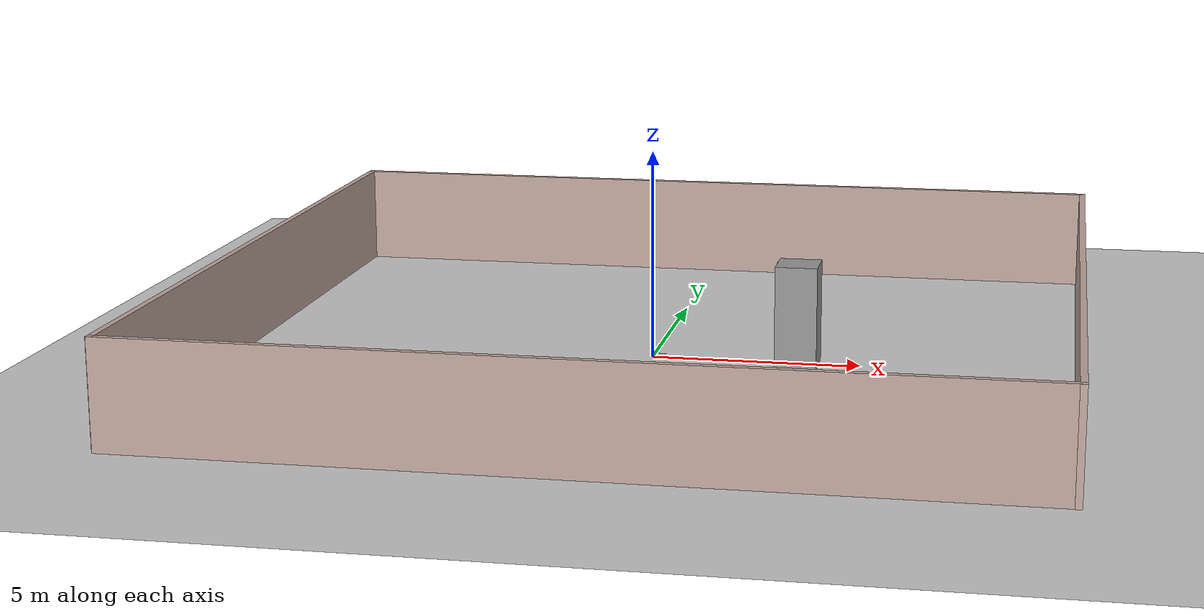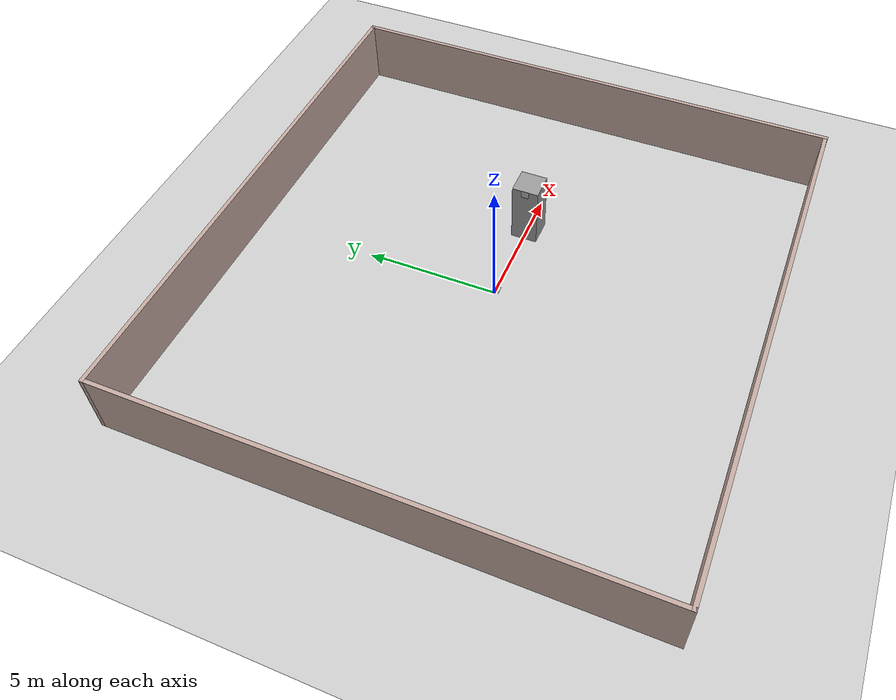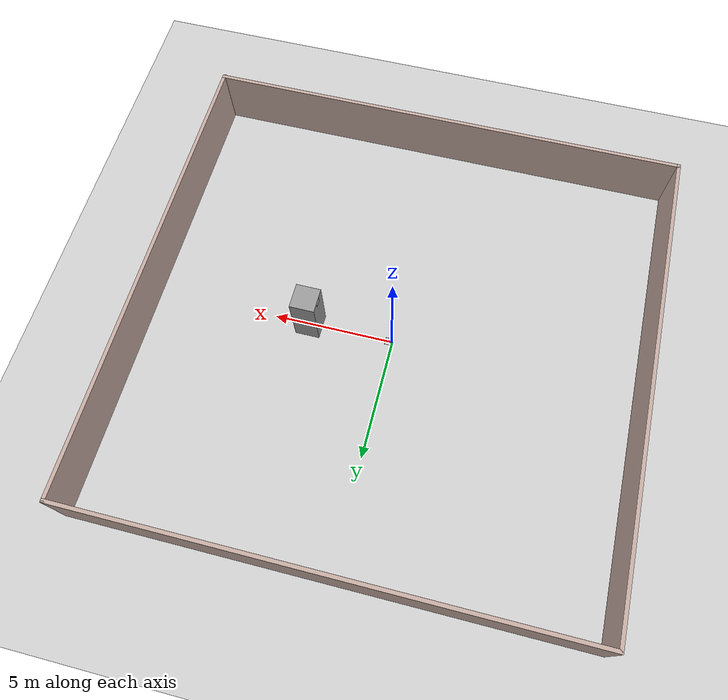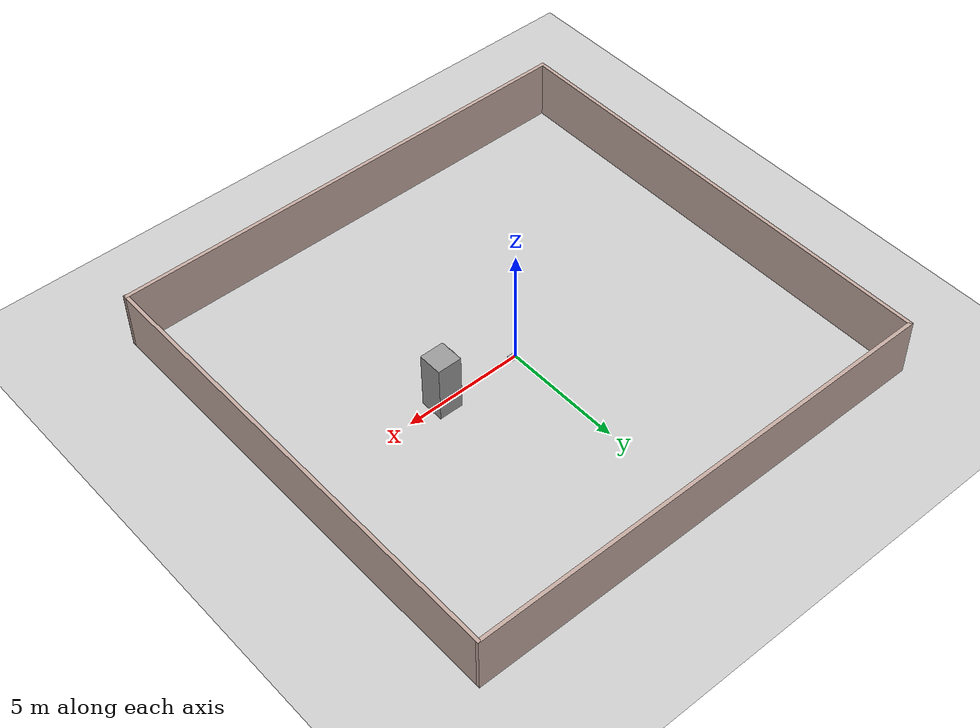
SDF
<sdf version="1.6">
 <world name="default">
  <include><uri>model://ApriltagID0</uri><pose>0.15 0 0.05 0 1.57 0</pose></include>
  <include><uri>model://ApriltagID1</uri><pose>3 0 2.3 0 -0 0</pose></include>
  <plugin name="ros_interface_plugin" filename="librotors_gazebo_ros_interface_plugin.so"/>
  <spherical_coordinates>
   <surface_model>EARTH_WGS84</surface_model>
   <latitude_deg>47.3667</latitude_deg>
   <longitude_deg>8.5500</longitude_deg>
   <elevation>500.0</elevation>
   <heading_deg>0</heading_deg>
  </spherical_coordinates>
  <physics type="ode">
   <ode>
    <solver><type>quick</type><iters>1000</iters><sor>1.3</sor></solver>
    <constraints>
     <cfm>0</cfm>
     <erp>0.2</erp>
     <contact_max_correcting_vel>100</contact_max_correcting_vel>
     <contact_surface_layer>0.001</contact_surface_layer>
    </constraints>
   </ode>
   <max_step_size>0.01</max_step_size>
   <real_time_factor>1</real_time_factor>
   <real_time_update_rate>100</real_time_update_rate>
   <gravity>0 0 -9.8</gravity>
  </physics>
  <light name="sun" type="directional">
   <pose>0 0 10 0 -0 0</pose>
   <diffuse>0.8 0.8 0.8 1</diffuse>
   <specular>0.2 0.2 0.2 1</specular>
   <attenuation>
    <range>1000</range>
    <constant>0.9</constant>
    <linear>0.01</linear>
    <quadratic>0.001</quadratic>
   </attenuation>
   <direction>-0.5 0.1 -0.9</direction>
  </light>
  <model name="ground_plane">
   <static>1</static>
   <link name="link">
    <collision name="collision">
     <geometry><plane><normal>0 0 1</normal><size>100 100</size></plane></geometry>
     <surface>
      <contact><collide_bitmask>65535</collide_bitmask></contact>
      <friction><ode><mu>100</mu><mu2>50</mu2></ode></friction>
     </surface>
    </collision>
    <visual name="visual">
     <cast_shadows>0</cast_shadows>
     <geometry><plane><normal>0 0 1</normal><size>100 100</size></plane></geometry>
     <material>
      <script><uri>file://media/materials/scripts/gazebo.material</uri><name>Gazebo/Grey</name></script>
     </material>
    </visual>
   </link>
  </model>
  <gravity>0 0 -9.8</gravity>
  <magnetic_field>6e-06 2.3e-05 -4.2e-05</magnetic_field>
  <atmosphere type="adiabatic"/>
  <physics name="default_physics" default="0" type="ode">
   <max_step_size>0.001</max_step_size>
   <real_time_factor>1</real_time_factor>
   <real_time_update_rate>1000</real_time_update_rate>
  </physics>
  <scene><ambient>0.4 0.4 0.4 1</ambient><background>0.7 0.7 0.7 1</background><shadows>1</shadows></scene>
  <audio><device>default</device></audio>
  <spherical_coordinates>
   <surface_model>EARTH_WGS84</surface_model>
   <latitude_deg>0</latitude_deg>
   <longitude_deg>0</longitude_deg>
   <elevation>0</elevation>
   <heading_deg>0</heading_deg>
  </spherical_coordinates>
  <model name="Room1">
   <pose>0.052821 0.021612 0 0 -0 0</pose>
   <link name="Wall_5">
    <collision name="Wall_5_Collision">
     <geometry><box><size>20.2375 0.15 2.5</size></box></geometry>
     <pose>0 0 1.25 0 -0 0</pose>
    </collision>
    <visual name="Wall_5_Visual">
     <pose>0 0 1.25 0 -0 0</pose>
     <geometry><box><size>20.2375 0.15 2.5</size></box></geometry>
     <material>
      <script><uri>file://media/materials/scripts/gazebo.material</uri><name>Gazebo/Grey</name></script>
      <ambient>0.760784 0.662745 0.627451 1</ambient>
     </material>
     <meta><layer>0</layer></meta>
    </visual>
    <pose>0.00159 9.72367 0 0 -0 -0.001065</pose>
   </link>
   <link name="Wall_6">
    <collision name="Wall_6_Collision">
     <geometry><box><size>19.5759 0.15 2.5</size></box></geometry>
     <pose>0 0 1.25 0 -0 0</pose>
    </collision>
    <visual name="Wall_6_Visual">
     <pose>0 0 1.25 0 -0 0</pose>
     <geometry><box><size>19.5759 0.15 2.5</size></box></geometry>
     <material>
      <script><uri>file://media/materials/scripts/gazebo.material</uri><name>Gazebo/Grey</name></script>
      <ambient>0.760784 0.662745 0.627451 1</ambient>
     </material>
     <meta><layer>0</layer></meta>
    </visual>
    <pose>10.0461 -0.021509 0 0 -0 -1.57071</pose>
   </link>
   <link name="Wall_7">
    <collision name="Wall_7_Collision">
     <geometry><box><size>20.2388 0.15 2.5</size></box></geometry>
     <pose>0 0 1.25 0 -0 0</pose>
    </collision>
    <visual name="Wall_7_Visual">
     <pose>0 0 1.25 0 -0 0</pose>
     <geometry><box><size>20.2388 0.15 2.5</size></box></geometry>
     <material>
      <script><uri>file://media/materials/scripts/gazebo.material</uri><name>Gazebo/Grey</name></script>
      <ambient>0.760784 0.662745 0.627451 1</ambient>
     </material>
     <meta><layer>0</layer></meta>
    </visual>
    <pose>0.002679 -9.71325 0 0 -0 -3.14155</pose>
   </link>
   <link name="Wall_8">
    <collision name="Wall_8_Collision">
     <geometry><box><size>19.5906 0.15 2.5</size></box></geometry>
     <pose>0 0 1.25 0 -0 0</pose>
    </collision>
    <visual name="Wall_8_Visual">
     <pose>0 0 1.25 0 -0 0</pose>
     <geometry><box><size>19.5906 0.15 2.5</size></box></geometry>
     <material>
      <script><uri>file://media/materials/scripts/gazebo.material</uri><name>Gazebo/Grey</name></script>
      <ambient>0.760784 0.662745 0.627451 1</ambient>
     </material>
     <meta><layer>0</layer></meta>
    </visual>
    <pose>-10.0446 0.006648 0 0 -0 1.57054</pose>
   </link>
   <static>1</static>
  </model>
  <model name="unit_box">
   <pose>3.5 0 1.2 0 0 0</pose>
   <link name="link">
    <inertial>
     <mass>1</mass>
     <inertia>
      <ixx>0.166667</ixx>
      <ixy>0</ixy>
      <ixz>0</ixz>
      <iyy>0.166667</iyy>
      <iyz>0</iyz>
      <izz>0.166667</izz>
     </inertia>
    </inertial>
    <collision name="collision"><geometry><box><size>1 1 2.48231</size></box></geometry></collision>
    <visual name="visual">
     <geometry><box><size>1 1 2.48231</size></box></geometry>
     <material>
      <script><name>Gazebo/Grey</name><uri>file://media/materials/scripts/gazebo.material</uri></script>
     </material>
    </visual>
   </link>
  </model>
 </world>
</sdf>

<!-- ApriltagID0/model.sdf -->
<sdf version='1.6'>
  <model name='ApriltagID0'>
    <static>true</static>
    <link name='link_1'>
      <inertial>
        <mass>0.1</mass>
        <inertia>
          <ixx>0.0166667</ixx>
          <ixy>0</ixy>
          <ixz>0</ixz>
          <iyy>0.0166667</iyy>
          <iyz>0</iyz>
          <izz>0.0166667</izz>
        </inertia>
        <pose frame=''>0 0 0 0 -0 0</pose>
      </inertial>
      <pose frame=''>0 0 0 0 -0 0</pose>
      <gravity>1</gravity>
      <self_collide>0</self_collide>
      <kinematic>0</kinematic>
      <enable_wind>0</enable_wind>
      <visual name='visual'>
        <pose frame=''>0 0 0 0 -0 0</pose>
        <geometry>
          <box>
            <size>0.01 0.3 0.3</size>
          </box>
        </geometry>
        <material>
          <lighting>0</lighting>
          <script>
            <uri>models://media/materials/scripts/Apriltag.material</uri>
            <name>Apriltag/id0</name>
          </script>
          <shader type='vertex'>
            <normal_map>__default__</normal_map>
          </shader>
          <ambient>0.3 0.3 0.3 1</ambient>
          <diffuse>0.7 0.7 0.7 1</diffuse>
          <specular>0.01 0.01 0.01 1</specular>
          <emissive>0 0 0 1</emissive>
        </material>
        <transparency>0</transparency>
        <cast_shadows>1</cast_shadows>
      </visual>
      <collision name='collision'>
        <laser_retro>0</laser_retro>
        <max_contacts>10</max_contacts>
        <pose frame=''>0 0 0 0 -0 0</pose>
        <geometry>
          <box>
            <size>0.01 0.3 0.3</size>
          </box>
        </geometry>
        <surface>
          <friction>
            <ode>
              <mu>1</mu>
              <mu2>1</mu2>
              <fdir1>0 0 0</fdir1>
              <slip1>0</slip1>
              <slip2>0</slip2>
            </ode>
            <torsional>
              <coefficient>1</coefficient>
              <patch_radius>0</patch_radius>
              <surface_radius>0</surface_radius>
              <use_patch_radius>1</use_patch_radius>
              <ode>
                <slip>0</slip>
              </ode>
            </torsional>
          </friction>
          <bounce>
            <restitution_coefficient>0</restitution_coefficient>
            <threshold>1e+06</threshold>
          </bounce>
          <contact>
            <collide_without_contact>0</collide_without_contact>
            <collide_without_contact_bitmask>1</collide_without_contact_bitmask>
            <collide_bitmask>1</collide_bitmask>
            <ode>
              <soft_cfm>0</soft_cfm>
              <soft_erp>0.2</soft_erp>
              <kp>1e+13</kp>
              <kd>1</kd>
              <max_vel>0.01</max_vel>
              <min_depth>0</min_depth>
            </ode>
            <bullet>
              <split_impulse>1</split_impulse>
              <split_impulse_penetration_threshold>-0.01</split_impulse_penetration_threshold>
              <soft_cfm>0</soft_cfm>
              <soft_erp>0.2</soft_erp>
              <kp>1e+13</kp>
              <kd>1</kd>
            </bullet>
          </contact>
        </surface>
      </collision>
    </link>
    <static>0</static>
    <allow_auto_disable>1</allow_auto_disable>
  </model>
</sdf>

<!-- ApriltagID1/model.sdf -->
<sdf version='1.6'>
  <model name='ApriltagID1'>
    <static>true</static>
    <link name='link_1'>
      <inertial>
        <mass>0.1</mass>
        <inertia>
          <ixx>0.0166667</ixx>
          <ixy>0</ixy>
          <ixz>0</ixz>
          <iyy>0.0166667</iyy>
          <iyz>0</iyz>
          <izz>0.0166667</izz>
        </inertia>
        <pose frame=''>0 0 0 0 -0 0</pose>
      </inertial>
      <pose frame=''>0 0 0 0 -0 0</pose>
      <gravity>1</gravity>
      <self_collide>0</self_collide>
      <kinematic>0</kinematic>
      <enable_wind>0</enable_wind>
      <visual name='visual'>
        <pose frame=''>0 0 0 0 -0 0</pose>
        <geometry>
          <box>
            <size>0.01 0.3 0.3</size>
          </box>
        </geometry>
        <material>
          <lighting>0</lighting>
          <script>
            <uri>models://media/materials/scripts/Apriltag.material</uri>
            <name>Apriltag/id1</name>
          </script>
          <shader type='vertex'>
            <normal_map>__default__</normal_map>
          </shader>
          <ambient>0.3 0.3 0.3 1</ambient>
          <diffuse>0.7 0.7 0.7 1</diffuse>
          <specular>0.01 0.01 0.01 1</specular>
          <emissive>0 0 0 1</emissive>
        </material>
        <transparency>0</transparency>
        <cast_shadows>1</cast_shadows>
      </visual>
      <collision name='collision'>
        <laser_retro>0</laser_retro>
        <max_contacts>10</max_contacts>
        <pose frame=''>0 0 0 0 -0 0</pose>
        <geometry>
          <box>
            <size>0.01 0.3 0.3</size>
          </box>
        </geometry>
        <surface>
          <friction>
            <ode>
              <mu>1</mu>
              <mu2>1</mu2>
              <fdir1>0 0 0</fdir1>
              <slip1>0</slip1>
              <slip2>0</slip2>
            </ode>
            <torsional>
              <coefficient>1</coefficient>
              <patch_radius>0</patch_radius>
              <surface_radius>0</surface_radius>
              <use_patch_radius>1</use_patch_radius>
              <ode>
                <slip>0</slip>
              </ode>
            </torsional>
          </friction>
          <bounce>
            <restitution_coefficient>0</restitution_coefficient>
            <threshold>1e+06</threshold>
          </bounce>
          <contact>
            <collide_without_contact>0</collide_without_contact>
            <collide_without_contact_bitmask>1</collide_without_contact_bitmask>
            <collide_bitmask>1</collide_bitmask>
            <ode>
              <soft_cfm>0</soft_cfm>
              <soft_erp>0.2</soft_erp>
              <kp>1e+13</kp>
              <kd>1</kd>
              <max_vel>0.01</max_vel>
              <min_depth>0</min_depth>
            </ode>
            <bullet>
              <split_impulse>1</split_impulse>
              <split_impulse_penetration_threshold>-0.01</split_impulse_penetration_threshold>
              <soft_cfm>0</soft_cfm>
              <soft_erp>0.2</soft_erp>
              <kp>1e+13</kp>
              <kd>1</kd>
            </bullet>
          </contact>
        </surface>
      </collision>
    </link>
    <static>0</static>
    <allow_auto_disable>1</allow_auto_disable>
  </model>
</sdf>
